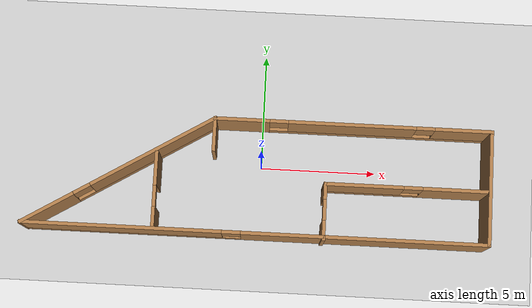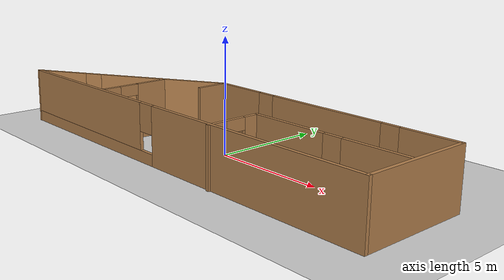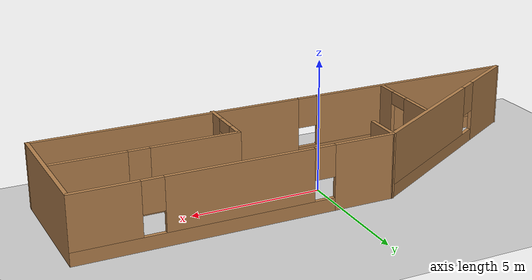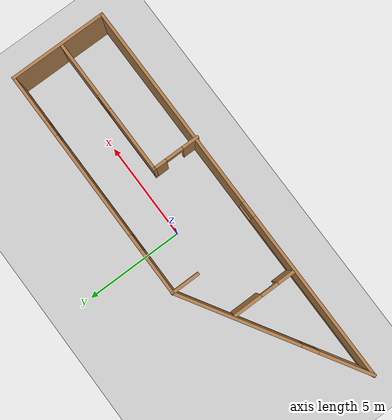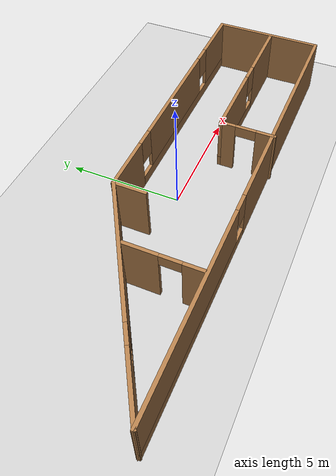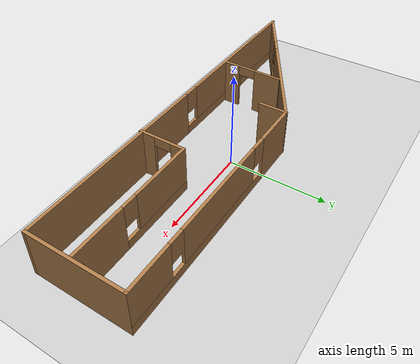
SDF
<sdf version="1.7">
 <world name="default">
  <light name="sun" type="directional">
   <pose>0 0 10 0 -0 0</pose>
   <diffuse>0.8 0.8 0.8 1</diffuse>
   <specular>0.2 0.2 0.2 1</specular>
   <attenuation>
    <range>1000</range>
    <constant>0.9</constant>
    <linear>0.01</linear>
    <quadratic>0.001</quadratic>
   </attenuation>
   <direction>-0.5 0.1 -0.9</direction>
   <spot><inner_angle>0</inner_angle><outer_angle>0</outer_angle><falloff>0</falloff></spot>
  </light>
  <model name="ground_plane">
   <static>1</static>
   <link name="link">
    <collision name="collision">
     <geometry><plane><normal>0 0 1</normal><size>100 100</size></plane></geometry>
     <surface>
      <contact><collide_bitmask>65535</collide_bitmask></contact>
      <friction><ode><mu>100</mu><mu2>50</mu2></ode></friction>
     </surface>
    </collision>
    <visual name="visual">
     <cast_shadows>0</cast_shadows>
     <geometry><plane><normal>0 0 1</normal><size>100 100</size></plane></geometry>
     <material>
      <script><uri>file://media/materials/scripts/gazebo.material</uri><name>Gazebo/Grey</name></script>
     </material>
    </visual>
   </link>
  </model>
  <gravity>0 0 -9.8</gravity>
  <magnetic_field>6e-06 2.3e-05 -4.2e-05</magnetic_field>
  <atmosphere type="adiabatic"/>
  <physics type="ode">
   <max_step_size>0.001</max_step_size>
   <real_time_factor>1</real_time_factor>
   <real_time_update_rate>1000</real_time_update_rate>
  </physics>
  <scene><ambient>0.4 0.4 0.4 1</ambient><background>0.7 0.7 0.7 1</background><shadows>1</shadows></scene>
  <spherical_coordinates>
   <surface_model>EARTH_WGS84</surface_model>
   <latitude_deg>0</latitude_deg>
   <longitude_deg>0</longitude_deg>
   <elevation>0</elevation>
   <heading_deg>0</heading_deg>
  </spherical_coordinates>
  <model name="home">
   <pose>-0.156945 0.122842 0 0 -0 0</pose>
   <link name="Wall_0">
    <pose>4.01401 1.60955 0 0 -0 0</pose>
    <visual name="Wall_0_Visual_0">
     <pose>-4.79016 0 1.25 0 -0 0</pose>
     <geometry><box><size>2.41967 0.15 2.5</size></box></geometry>
     <material>
      <script><uri>file://media/materials/scripts/gazebo.material</uri><name>Gazebo/Wood</name></script>
      <ambient>1 1 1 1</ambient>
     </material>
     <meta><layer>0</layer></meta>
    </visual>
    <collision name="Wall_0_Collision_0">
     <geometry><box><size>2.41967 0.15 2.5</size></box></geometry>
     <pose>-4.79016 0 1.25 0 -0 0</pose>
    </collision>
    <visual name="Wall_0_Visual_1">
     <pose>1.20984 0 0.25 0 -0 0</pose>
     <geometry><box><size>9.58033 0.15 0.5</size></box></geometry>
     <material>
      <script><uri>file://media/materials/scripts/gazebo.material</uri><name>Gazebo/Wood</name></script>
      <ambient>1 1 1 1</ambient>
     </material>
     <meta><layer>0</layer></meta>
    </visual>
    <collision name="Wall_0_Collision_1">
     <geometry><box><size>9.58033 0.15 0.5</size></box></geometry>
     <pose>1.20984 0 0.25 0 -0 0</pose>
    </collision>
    <visual name="Wall_0_Visual_2">
     <pose>-0.042611 0 1.5 0 -0 0</pose>
     <geometry><box><size>5.47543 0.15 2</size></box></geometry>
     <material>
      <script><uri>file://media/materials/scripts/gazebo.material</uri><name>Gazebo/Wood</name></script>
      <ambient>1 1 1 1</ambient>
     </material>
     <meta><layer>0</layer></meta>
    </visual>
    <collision name="Wall_0_Collision_2">
     <geometry><box><size>5.47543 0.15 2</size></box></geometry>
     <pose>-0.042611 0 1.5 0 -0 0</pose>
    </collision>
    <visual name="Wall_0_Visual_3">
     <pose>4.74755 0 1.5 0 -0 0</pose>
     <geometry><box><size>2.50489 0.15 2</size></box></geometry>
     <material>
      <script><uri>file://media/materials/scripts/gazebo.material</uri><name>Gazebo/Wood</name></script>
      <ambient>1 1 1 1</ambient>
     </material>
     <meta><layer>0</layer></meta>
    </visual>
    <collision name="Wall_0_Collision_3">
     <geometry><box><size>2.50489 0.15 2</size></box></geometry>
     <pose>4.74755 0 1.5 0 -0 0</pose>
    </collision>
    <visual name="Wall_0_Visual_4">
     <pose>-3.18033 0 1.9 0 -0 0</pose>
     <geometry><box><size>0.8 0.15 1.2</size></box></geometry>
     <material>
      <script><uri>file://media/materials/scripts/gazebo.material</uri><name>Gazebo/Wood</name></script>
      <ambient>1 1 1 1</ambient>
     </material>
     <meta><layer>0</layer></meta>
    </visual>
    <collision name="Wall_0_Collision_4">
     <geometry><box><size>0.8 0.15 1.2</size></box></geometry>
     <pose>-3.18033 0 1.9 0 -0 0</pose>
    </collision>
    <visual name="Wall_0_Visual_5">
     <pose>3.09511 0 1.9 0 -0 0</pose>
     <geometry><box><size>0.8 0.15 1.2</size></box></geometry>
     <material>
      <script><uri>file://media/materials/scripts/gazebo.material</uri><name>Gazebo/Wood</name></script>
      <ambient>1 1 1 1</ambient>
     </material>
     <meta><layer>0</layer></meta>
    </visual>
    <collision name="Wall_0_Collision_5">
     <geometry><box><size>0.8 0.15 1.2</size></box></geometry>
     <pose>3.09511 0 1.9 0 -0 0</pose>
    </collision>
   </link>
   <link name="Wall_1">
    <collision name="Wall_1_Collision">
     <geometry><box><size>5 0.15 2.5</size></box></geometry>
     <pose>0 0 1.25 0 -0 0</pose>
    </collision>
    <visual name="Wall_1_Visual">
     <pose>0 0 1.25 0 -0 0</pose>
     <geometry><box><size>5 0.15 2.5</size></box></geometry>
     <material>
      <script><uri>file://media/materials/scripts/gazebo.material</uri><name>Gazebo/Wood</name></script>
      <ambient>1 1 1 1</ambient>
     </material>
     <meta><layer>0</layer></meta>
    </visual>
    <pose>9.93901 -0.815453 0 0 -0 -1.5708</pose>
   </link>
   <link name="Wall_2">
    <pose>0.014008 -3.24045 0 0 -0 3.14159</pose>
    <visual name="Wall_2_Visual_0">
     <pose>-4.70472 0 1.25 0 -0 0</pose>
     <geometry><box><size>10.5906 0.15 2.5</size></box></geometry>
     <material>
      <script><uri>file://media/materials/scripts/gazebo.material</uri><name>Gazebo/Wood</name></script>
      <ambient>0.921569 0.807843 0.615686 1</ambient>
     </material>
     <meta><layer>0</layer></meta>
    </visual>
    <collision name="Wall_2_Collision_0">
     <geometry><box><size>10.5906 0.15 2.5</size></box></geometry>
     <pose>-4.70472 0 1.25 0 -0 0</pose>
    </collision>
    <visual name="Wall_2_Visual_1">
     <pose>5.29528 0 0.25 0 -0 0</pose>
     <geometry><box><size>9.40945 0.15 0.5</size></box></geometry>
     <material>
      <script><uri>file://media/materials/scripts/gazebo.material</uri><name>Gazebo/Wood</name></script>
      <ambient>0.921569 0.807843 0.615686 1</ambient>
     </material>
     <meta><layer>0</layer></meta>
    </visual>
    <collision name="Wall_2_Collision_1">
     <geometry><box><size>9.40945 0.15 0.5</size></box></geometry>
     <pose>5.29528 0 0.25 0 -0 0</pose>
    </collision>
    <visual name="Wall_2_Visual_2">
     <pose>5.69527 0 1.5 0 -0 0</pose>
     <geometry><box><size>8.60945 0.15 2</size></box></geometry>
     <material>
      <script><uri>file://media/materials/scripts/gazebo.material</uri><name>Gazebo/Wood</name></script>
      <ambient>0.921569 0.807843 0.615686 1</ambient>
     </material>
     <meta><layer>0</layer></meta>
    </visual>
    <collision name="Wall_2_Collision_2">
     <geometry><box><size>8.60945 0.15 2</size></box></geometry>
     <pose>5.69527 0 1.5 0 -0 0</pose>
    </collision>
    <visual name="Wall_2_Visual_3">
     <pose>0.99055 0 1.9 0 -0 0</pose>
     <geometry><box><size>0.8 0.15 1.2</size></box></geometry>
     <material>
      <script><uri>file://media/materials/scripts/gazebo.material</uri><name>Gazebo/Wood</name></script>
      <ambient>0.921569 0.807843 0.615686 1</ambient>
     </material>
     <meta><layer>0</layer></meta>
    </visual>
    <collision name="Wall_2_Collision_3">
     <geometry><box><size>0.8 0.15 1.2</size></box></geometry>
     <pose>0.99055 0 1.9 0 -0 0</pose>
    </collision>
   </link>
   <link name="Wall_3">
    <pose>-5.91099 -0.815453 0 0 -0 0.545002</pose>
    <visual name="Wall_3_Visual_0">
     <pose>-3.44925 0 1.25 0 -0 0</pose>
     <geometry><box><size>2.60685 0.15 2.5</size></box></geometry>
     <material>
      <script><uri>file://media/materials/scripts/gazebo.material</uri><name>Gazebo/Wood</name></script>
      <ambient>1 1 1 1</ambient>
     </material>
     <meta><layer>0</layer></meta>
    </visual>
    <collision name="Wall_3_Collision_0">
     <geometry><box><size>2.60685 0.15 2.5</size></box></geometry>
     <pose>-3.44925 0 1.25 0 -0 0</pose>
    </collision>
    <visual name="Wall_3_Visual_1">
     <pose>1.30343 0 0.25 0 -0 0</pose>
     <geometry><box><size>6.89849 0.15 0.5</size></box></geometry>
     <material>
      <script><uri>file://media/materials/scripts/gazebo.material</uri><name>Gazebo/Wood</name></script>
      <ambient>1 1 1 1</ambient>
     </material>
     <meta><layer>0</layer></meta>
    </visual>
    <collision name="Wall_3_Collision_1">
     <geometry><box><size>6.89849 0.15 0.5</size></box></geometry>
     <pose>1.30343 0 0.25 0 -0 0</pose>
    </collision>
    <visual name="Wall_3_Visual_2">
     <pose>1.70342 0 1.5 0 -0 0</pose>
     <geometry><box><size>6.09849 0.15 2</size></box></geometry>
     <material>
      <script><uri>file://media/materials/scripts/gazebo.material</uri><name>Gazebo/Wood</name></script>
      <ambient>1 1 1 1</ambient>
     </material>
     <meta><layer>0</layer></meta>
    </visual>
    <collision name="Wall_3_Collision_2">
     <geometry><box><size>6.09849 0.15 2</size></box></geometry>
     <pose>1.70342 0 1.5 0 -0 0</pose>
    </collision>
    <visual name="Wall_3_Visual_3">
     <pose>-1.74582 0 1.9 0 -0 0</pose>
     <geometry><box><size>0.8 0.15 1.2</size></box></geometry>
     <material>
      <script><uri>file://media/materials/scripts/gazebo.material</uri><name>Gazebo/Wood</name></script>
      <ambient>1 1 1 1</ambient>
     </material>
     <meta><layer>0</layer></meta>
    </visual>
    <collision name="Wall_3_Collision_3">
     <geometry><box><size>0.8 0.15 1.2</size></box></geometry>
     <pose>-1.74582 0 1.9 0 -0 0</pose>
    </collision>
   </link>
   <link name="Wall_4">
    <collision name="Wall_4_Collision">
     <geometry><box><size>1.5 0.15 2.5</size></box></geometry>
     <pose>0 0 1.25 0 -0 0</pose>
    </collision>
    <visual name="Wall_4_Visual">
     <pose>0 0 1.25 0 -0 0</pose>
     <geometry><box><size>1.5 0.15 2.5</size></box></geometry>
     <material>
      <script><uri>file://media/materials/scripts/gazebo.material</uri><name>Gazebo/Wood</name></script>
      <ambient>1 1 1 1</ambient>
     </material>
     <meta><layer>0</layer></meta>
    </visual>
    <pose>-1.91099 0.934548 0 0 -0 -1.5708</pose>
   </link>
   <link name="Wall_6">
    <pose>6.35922 -0.974547 0 0 -0 3.14159</pose>
    <visual name="Wall_6_Visual_0">
     <pose>-2.1037 0 1.25 0 -0 0</pose>
     <geometry><box><size>2.7926 0.15 2.5</size></box></geometry>
     <material>
      <script><uri>file://media/materials/scripts/gazebo.material</uri><name>Gazebo/Wood</name></script>
      <ambient>1 1 1 1</ambient>
     </material>
     <meta><layer>0</layer></meta>
    </visual>
    <collision name="Wall_6_Collision_0">
     <geometry><box><size>2.7926 0.15 2.5</size></box></geometry>
     <pose>-2.1037 0 1.25 0 -0 0</pose>
    </collision>
    <visual name="Wall_6_Visual_1">
     <pose>1.3963 0 0.25 0 -0 0</pose>
     <geometry><box><size>4.2074 0.15 0.5</size></box></geometry>
     <material>
      <script><uri>file://media/materials/scripts/gazebo.material</uri><name>Gazebo/Wood</name></script>
      <ambient>1 1 1 1</ambient>
     </material>
     <meta><layer>0</layer></meta>
    </visual>
    <collision name="Wall_6_Collision_1">
     <geometry><box><size>4.2074 0.15 0.5</size></box></geometry>
     <pose>1.3963 0 0.25 0 -0 0</pose>
    </collision>
    <visual name="Wall_6_Visual_2">
     <pose>1.7963 0 1.5 0 -0 0</pose>
     <geometry><box><size>3.4074 0.15 2</size></box></geometry>
     <material>
      <script><uri>file://media/materials/scripts/gazebo.material</uri><name>Gazebo/Wood</name></script>
      <ambient>1 1 1 1</ambient>
     </material>
     <meta><layer>0</layer></meta>
    </visual>
    <collision name="Wall_6_Collision_2">
     <geometry><box><size>3.4074 0.15 2</size></box></geometry>
     <pose>1.7963 0 1.5 0 -0 0</pose>
    </collision>
    <visual name="Wall_6_Visual_3">
     <pose>-0.307396 0 1.9 0 -0 0</pose>
     <geometry><box><size>0.8 0.15 1.2</size></box></geometry>
     <material>
      <script><uri>file://media/materials/scripts/gazebo.material</uri><name>Gazebo/Wood</name></script>
      <ambient>1 1 1 1</ambient>
     </material>
     <meta><layer>0</layer></meta>
    </visual>
    <collision name="Wall_6_Collision_3">
     <geometry><box><size>0.8 0.15 1.2</size></box></geometry>
     <pose>-0.307396 0 1.9 0 -0 0</pose>
    </collision>
   </link>
   <link name="Wall_7">
    <pose>2.93422 -2.14955 0 0 -0 -1.5708</pose>
    <visual name="Wall_7_Visual_0">
     <pose>-0.884377 0 1.25 0 -0 0</pose>
     <geometry><box><size>0.731246 0.15 2.5</size></box></geometry>
     <material>
      <script><uri>file://media/materials/scripts/gazebo.material</uri><name>Gazebo/Wood</name></script>
      <ambient>1 1 1 1</ambient>
     </material>
     <meta><layer>0</layer></meta>
    </visual>
    <collision name="Wall_7_Collision_0">
     <geometry><box><size>0.731246 0.15 2.5</size></box></geometry>
     <pose>-0.884377 0 1.25 0 -0 0</pose>
    </collision>
    <visual name="Wall_7_Visual_1">
     <pose>0.815623 0 1.25 0 -0 0</pose>
     <geometry><box><size>0.868754 0.15 2.5</size></box></geometry>
     <material>
      <script><uri>file://media/materials/scripts/gazebo.material</uri><name>Gazebo/Wood</name></script>
      <ambient>1 1 1 1</ambient>
     </material>
     <meta><layer>0</layer></meta>
    </visual>
    <collision name="Wall_7_Collision_1">
     <geometry><box><size>0.868754 0.15 2.5</size></box></geometry>
     <pose>0.815623 0 1.25 0 -0 0</pose>
    </collision>
    <visual name="Wall_7_Visual_2">
     <pose>-0.068754 0 2.25 0 -0 0</pose>
     <geometry><box><size>0.9 0.15 0.5</size></box></geometry>
     <material>
      <script><uri>file://media/materials/scripts/gazebo.material</uri><name>Gazebo/Wood</name></script>
      <ambient>1 1 1 1</ambient>
     </material>
     <meta><layer>0</layer></meta>
    </visual>
    <collision name="Wall_7_Collision_2">
     <geometry><box><size>0.9 0.15 0.5</size></box></geometry>
     <pose>-0.068754 0 2.25 0 -0 0</pose>
    </collision>
   </link>
   <link name="Wall_9">
    <pose>-4.31539 -1.5591 0 0 -0 -1.5708</pose>
    <visual name="Wall_9_Visual_0">
     <pose>-0.887276 0 1.25 0 -0 0</pose>
     <geometry><box><size>1.47545 0.15 2.5</size></box></geometry>
     <material>
      <script><uri>file://media/materials/scripts/gazebo.material</uri><name>Gazebo/Wood</name></script>
      <ambient>1 1 1 1</ambient>
     </material>
     <meta><layer>0</layer></meta>
    </visual>
    <collision name="Wall_9_Collision_0">
     <geometry><box><size>1.47545 0.15 2.5</size></box></geometry>
     <pose>-0.887276 0 1.25 0 -0 0</pose>
    </collision>
    <visual name="Wall_9_Visual_1">
     <pose>1.18772 0 1.25 0 -0 0</pose>
     <geometry><box><size>0.874552 0.15 2.5</size></box></geometry>
     <material>
      <script><uri>file://media/materials/scripts/gazebo.material</uri><name>Gazebo/Wood</name></script>
      <ambient>1 1 1 1</ambient>
     </material>
     <meta><layer>0</layer></meta>
    </visual>
    <collision name="Wall_9_Collision_1">
     <geometry><box><size>0.874552 0.15 2.5</size></box></geometry>
     <pose>1.18772 0 1.25 0 -0 0</pose>
    </collision>
    <visual name="Wall_9_Visual_2">
     <pose>0.300448 0 2.25 0 -0 0</pose>
     <geometry><box><size>0.9 0.15 0.5</size></box></geometry>
     <material>
      <script><uri>file://media/materials/scripts/gazebo.material</uri><name>Gazebo/Wood</name></script>
      <ambient>1 1 1 1</ambient>
     </material>
     <meta><layer>0</layer></meta>
    </visual>
    <collision name="Wall_9_Collision_2">
     <geometry><box><size>0.9 0.15 0.5</size></box></geometry>
     <pose>0.300448 0 2.25 0 -0 0</pose>
    </collision>
   </link>
   <static>1</static>
  </model>
 </world>
</sdf>
